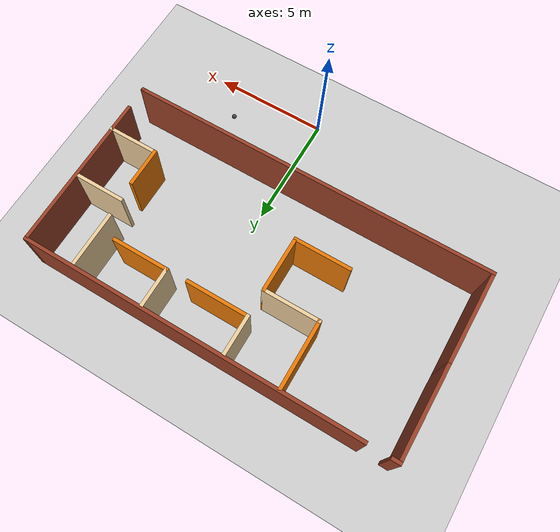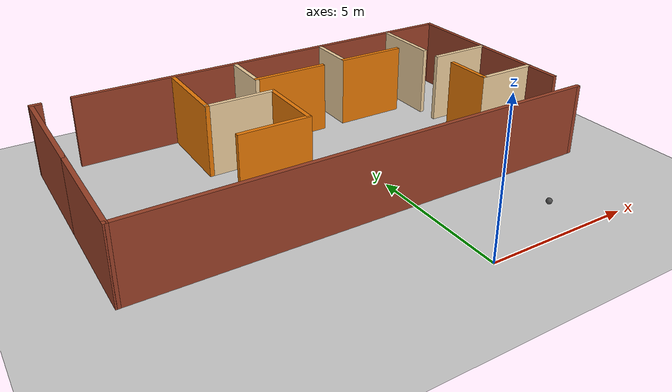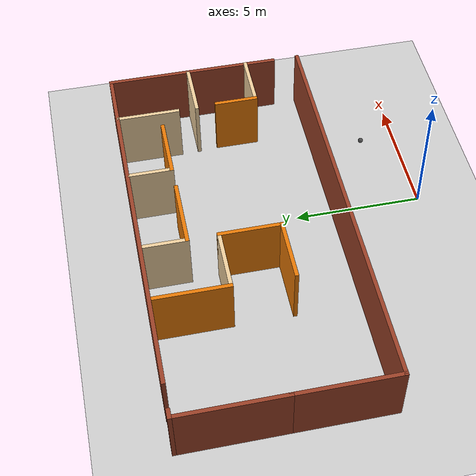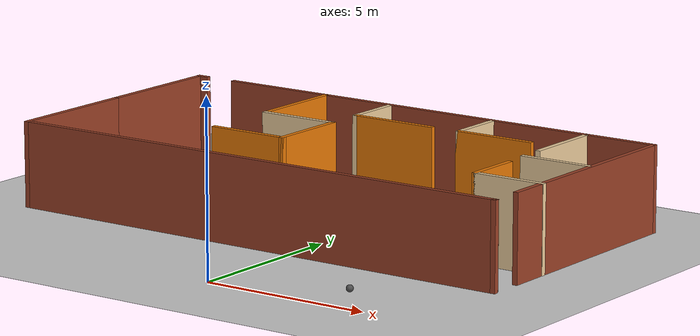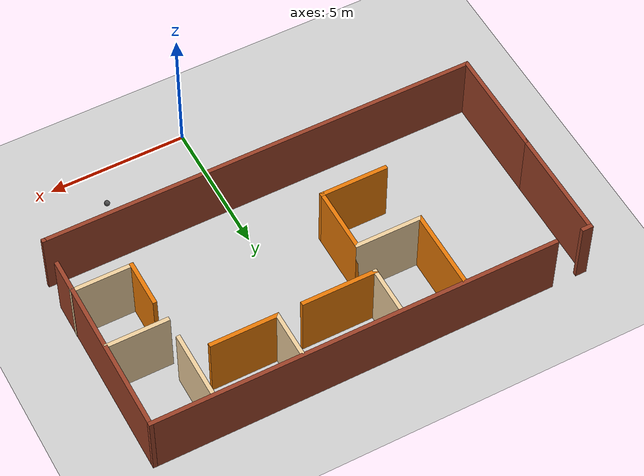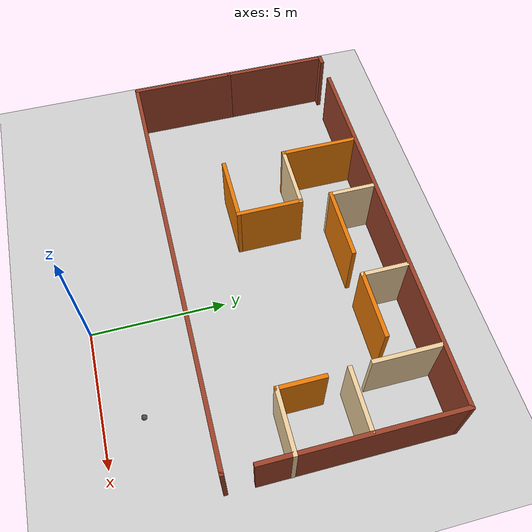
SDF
<?xml version="1.0" ?>
<sdf version="1.8">
  <world name="boc_office">

    <plugin filename="gz-sim-physics-system" name="gz::sim::systems::Physics"/>
    <plugin filename="gz-sim-scene-broadcaster-system" name="gz::sim::systems::SceneBroadcaster"/>
    <plugin filename="gz-sim-user-commands-system" name="gz::sim::systems::UserCommands"/>
    <plugin filename="gz-sim-sensors-system" name="gz::sim::systems::Sensors">
      <render_engine>ogre2</render_engine>
    </plugin>

    <light type="directional" name="sun">
      <cast_shadows>true</cast_shadows>
      <pose>0 0 10 0 0 0</pose>
      <diffuse>0.8 0.8 0.8 1</diffuse>
      <specular>0.2 0.2 0.2 1</specular>
      <direction>-0.5 0.1 -0.9</direction>
    </light>

    <model name="ground_plane">
      <static>true</static>
      <link name="link">
        <collision name="collision"><geometry><plane><normal>0 0 1</normal><size>100 100</size></plane></geometry></collision>
        <visual name="visual">
          <geometry><plane><normal>0 0 1</normal><size>100 100</size></plane></geometry>
          <material><ambient>0.8 0.8 0.8 1</ambient><diffuse>0.8 0.8 0.8 1</diffuse></material>
        </visual>
      </link>
    </model>

    <model name='my_ball'>
      <pose>3.55994 1.41227 0.1 0 0 0</pose>
      <link name='link_0'>
        <inertial><mass>1</mass><inertia><ixx>0.1</ixx><iyy>0.1</iyy><izz>0.1</izz></inertia></inertial>
        <collision name='collision'><geometry><sphere><radius>0.1</radius></sphere></geometry></collision>
        <visual name='visual'>
          <geometry><sphere><radius>0.1</radius></sphere></geometry>
          <material><ambient>0.3 0.3 0.3 1</ambient><diffuse>0.3 0.3 0.3 1</diffuse></material>
        </visual>
      </link>
    </model>

    <model name='sudhir.building'>
      <pose>-1.27854 7.44696 0 0 0 0</pose>
      <static>true</static>

      <link name='Wall_0'>
        <pose>-7.92943 1.85 0 0 0 -1.5708</pose>
        <collision name='Wall_0_Col'><pose>0 0 1.25 0 0 0</pose><geometry><box><size>4 0.15 2.5</size></box></geometry></collision>
        <visual name='Wall_0_Vis'><pose>0 0 1.25 0 0 0</pose><geometry><box><size>4 0.15 2.5</size></box></geometry><material><ambient>0.6 0.25 0.15 1</ambient><diffuse>0.6 0.25 0.15 1</diffuse></material></visual>
      </link>
      <link name='Wall_3'>
        <pose>-7.92943 -2 0 0 0 -1.5708</pose>
        <collision name='Wall_3_Col'><pose>0 0 1.25 0 0 0</pose><geometry><box><size>4 0.15 2.5</size></box></geometry></collision>
        <visual name='Wall_3_Vis'><pose>0 0 1.25 0 0 0</pose><geometry><box><size>4 0.15 2.5</size></box></geometry><material><ambient>0.6 0.25 0.15 1</ambient><diffuse>0.6 0.25 0.15 1</diffuse></material></visual>
      </link>
      <link name='Wall_4'>
        <pose>-0.004434 -3.925 0 0 0 0</pose>
        <collision name='Wall_4_Col'><pose>0 0 1.25 0 0 0</pose><geometry><box><size>16 0.15 2.5</size></box></geometry></collision>
        <visual name='Wall_4_Vis'><pose>0 0 1.25 0 0 0</pose><geometry><box><size>16 0.15 2.5</size></box></geometry><material><ambient>0.6 0.25 0.15 1</ambient><diffuse>0.6 0.25 0.15 1</diffuse></material></visual>
      </link>
      <link name='Wall_5'>
        <pose>7.92057 0 0 0 0 1.5708</pose>
        <collision name='Wall_5_Col_0'><pose>-3.92553 0 1.25 0 0 0</pose><geometry><box><size>0.148947 0.15 2.5</size></box></geometry></collision>
        <visual name='Wall_5_Vis_0'><pose>-3.92553 0 1.25 0 0 0</pose><geometry><box><size>0.148947 0.15 2.5</size></box></geometry><material><ambient>0.6 0.25 0.15 1</ambient><diffuse>0.6 0.25 0.15 1</diffuse></material></visual>
        <collision name='Wall_5_Col_1'><pose>0.524473 0 1.25 0 0 0</pose><geometry><box><size>6.95105 0.15 2.5</size></box></geometry></collision>
        <visual name='Wall_5_Vis_1'><pose>0.524473 0 1.25 0 0 0</pose><geometry><box><size>6.95105 0.15 2.5</size></box></geometry><material><ambient>0.6 0.25 0.15 1</ambient><diffuse>0.6 0.25 0.15 1</diffuse></material></visual>
      </link>
      <link name='Wall_6'>
        <pose>-0.004434 3.925 0 0 0 3.14159</pose>
        <collision name='Wall_6_Col_0'><pose>-0.655307 0 1.25 0 0 0</pose><geometry><box><size>14.6894 0.15 2.5</size></box></geometry></collision>
        <visual name='Wall_6_Vis_0'><pose>-0.655307 0 1.25 0 0 0</pose><geometry><box><size>14.6894 0.15 2.5</size></box></geometry><material><ambient>0.6 0.25 0.15 1</ambient><diffuse>0.6 0.25 0.15 1</diffuse></material></visual>
        <collision name='Wall_6_Col_1'><pose>7.79469 0 1.25 0 0 0</pose><geometry><box><size>0.410614 0.15 2.5</size></box></geometry></collision>
        <visual name='Wall_6_Vis_1'><pose>7.79469 0 1.25 0 0 0</pose><geometry><box><size>0.410614 0.15 2.5</size></box></geometry><material><ambient>0.6 0.25 0.15 1</ambient><diffuse>0.6 0.25 0.15 1</diffuse></material></visual>
      </link>

      <link name='Wall_8'>
        <pose>-3.24179 2.45506 0 0 0 -1.5708</pose>
        <collision name='Wall_8_Col'><pose>0 0 1.25 0 0 0</pose><geometry><box><size>3 0.15 2.5</size></box></geometry></collision>
        <visual name='Wall_8_Vis'><pose>0 0 1.25 0 0 0</pose><geometry><box><size>3 0.15 2.5</size></box></geometry><material><ambient>0.9 0.47 0.02 1</ambient><diffuse>0.9 0.47 0.02 1</diffuse></material></visual>
      </link>
      <link name='Wall_9'>
        <pose>-2.06679 1.03006 0 0 0 0</pose>
        <collision name='Wall_9_Col'><pose>0 0 1.25 0 0 0</pose><geometry><box><size>2.5 0.15 2.5</size></box></geometry></collision>
        <visual name='Wall_9_Vis'><pose>0 0 1.25 0 0 0</pose><geometry><box><size>2.5 0.15 2.5</size></box></geometry><material><ambient>0.92 0.80 0.61 1</ambient><diffuse>0.92 0.80 0.61 1</diffuse></material></visual>
      </link>
      <link name='Wall_10'>
        <pose>-0.891787 -0.14494 0 0 0 -1.5708</pose>
        <collision name='Wall_10_Col'><pose>0 0 1.25 0 0 0</pose><geometry><box><size>2.5 0.15 2.5</size></box></geometry></collision>
        <visual name='Wall_10_Vis'><pose>0 0 1.25 0 0 0</pose><geometry><box><size>2.5 0.15 2.5</size></box></geometry><material><ambient>0.9 0.47 0.02 1</ambient><diffuse>0.9 0.47 0.02 1</diffuse></material></visual>
      </link>
      <link name='Wall_11'>
        <pose>-2.06679 -1.31994 0 0 0 3.14159</pose>
        <collision name='Wall_11_Col'><pose>0 0 1.25 0 0 0</pose><geometry><box><size>2.5 0.15 2.5</size></box></geometry></collision>
        <visual name='Wall_11_Vis'><pose>0 0 1.25 0 0 0</pose><geometry><box><size>2.5 0.15 2.5</size></box></geometry><material><ambient>0.9 0.47 0.02 1</ambient><diffuse>0.9 0.47 0.02 1</diffuse></material></visual>
      </link>
      <link name='Wall_13'>
        <pose>-0.908613 2.9996 0 0 0 -1.5708</pose>
        <collision name='Wall_13_Col'><pose>0 0 1.25 0 0 0</pose><geometry><box><size>1.75 0.15 2.5</size></box></geometry></collision>
        <visual name='Wall_13_Vis'><pose>0 0 1.25 0 0 0</pose><geometry><box><size>1.75 0.15 2.5</size></box></geometry><material><ambient>0.92 0.80 0.61 1</ambient><diffuse>0.92 0.80 0.61 1</diffuse></material></visual>
      </link>
      <link name='Wall_14'>
        <pose>0.391387 2.19961 0 0 0 0</pose>
        <collision name='Wall_14_Col'><pose>0 0 1.25 0 0 0</pose><geometry><box><size>2.75 0.15 2.5</size></box></geometry></collision>
        <visual name='Wall_14_Vis'><pose>0 0 1.25 0 0 0</pose><geometry><box><size>2.75 0.15 2.5</size></box></geometry><material><ambient>0.9 0.47 0.02 1</ambient><diffuse>0.9 0.47 0.02 1</diffuse></material></visual>
      </link>
      <link name='Wall_17'>
        <pose>2.63138 3.01972 0 0 0 -1.5708</pose>
        <collision name='Wall_17_Col'><pose>0 0 1.25 0 0 0</pose><geometry><box><size>1.75 0.15 2.5</size></box></geometry></collision>
        <visual name='Wall_17_Vis'><pose>0 0 1.25 0 0 0</pose><geometry><box><size>1.75 0.15 2.5</size></box></geometry><material><ambient>0.92 0.80 0.61 1</ambient><diffuse>0.92 0.80 0.61 1</diffuse></material></visual>
      </link>
      <link name='Wall_18'>
        <pose>3.80638 2.21972 0 0 0 0</pose>
        <collision name='Wall_18_Col'><pose>0 0 1.25 0 0 0</pose><geometry><box><size>2.5 0.15 2.5</size></box></geometry></collision>
        <visual name='Wall_18_Vis'><pose>0 0 1.25 0 0 0</pose><geometry><box><size>2.5 0.15 2.5</size></box></geometry><material><ambient>0.9 0.47 0.02 1</ambient><diffuse>0.9 0.47 0.02 1</diffuse></material></visual>
      </link>
      <link name='Wall_20'>
        <pose>5.74898 2.68495 0 0 0 -1.5708</pose>
        <collision name='Wall_20_Col'><pose>0 0 1.25 0 0 0</pose><geometry><box><size>2.5 0.15 2.5</size></box></geometry></collision>
        <visual name='Wall_20_Vis'><pose>0 0 1.25 0 0 0</pose><geometry><box><size>2.5 0.15 2.5</size></box></geometry><material><ambient>0.92 0.80 0.61 1</ambient><diffuse>0.92 0.80 0.61 1</diffuse></material></visual>
      </link>
      <link name='Wall_22'>
        <pose>6.81909 0.722229 0 0 0 0</pose>
        <collision name='Wall_22_Col'><pose>0 0 1.25 0 0 0</pose><geometry><box><size>2.25 0.15 2.5</size></box></geometry></collision>
        <visual name='Wall_22_Vis'><pose>0 0 1.25 0 0 0</pose><geometry><box><size>2.25 0.15 2.5</size></box></geometry><material><ambient>0.92 0.80 0.61 1</ambient><diffuse>0.92 0.80 0.61 1</diffuse></material></visual>
      </link>
      <link name='Wall_24'>
        <pose>5.82943 -0.902428 0 0 0 -1.5708</pose>
        <collision name='Wall_24_Col'><pose>0 0 1.25 0 0 0</pose><geometry><box><size>1.75 0.15 2.5</size></box></geometry></collision>
        <visual name='Wall_24_Vis'><pose>0 0 1.25 0 0 0</pose><geometry><box><size>1.75 0.15 2.5</size></box></geometry><material><ambient>0.9 0.47 0.02 1</ambient><diffuse>0.9 0.47 0.02 1</diffuse></material></visual>
      </link>
      <link name='Wall_25'>
        <pose>6.87943 -1.70243 0 0 0 0</pose>
        <collision name='Wall_25_Col'><pose>0 0 1.25 0 0 0</pose><geometry><box><size>2.25 0.15 2.5</size></box></geometry></collision>
        <visual name='Wall_25_Vis'><pose>0 0 1.25 0 0 0</pose><geometry><box><size>2.25 0.15 2.5</size></box></geometry><material><ambient>0.92 0.80 0.61 1</ambient><diffuse>0.92 0.80 0.61 1</diffuse></material></visual>
      </link>
    </model>

  </world>
</sdf>
